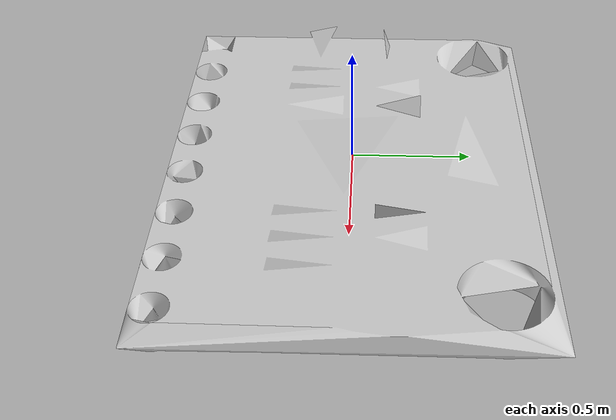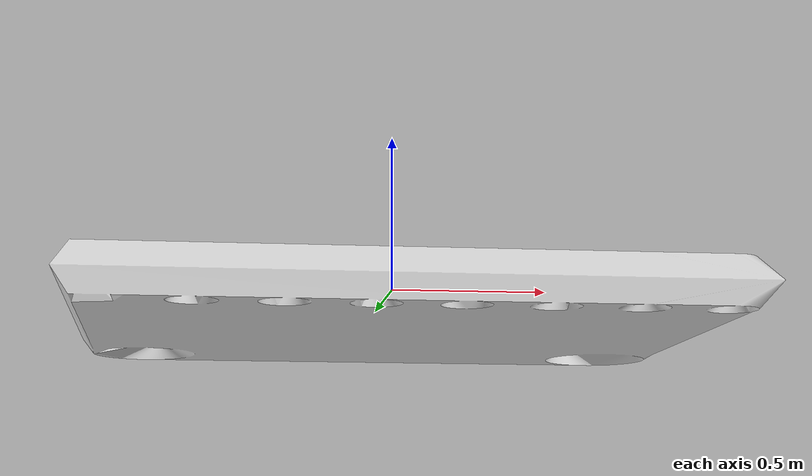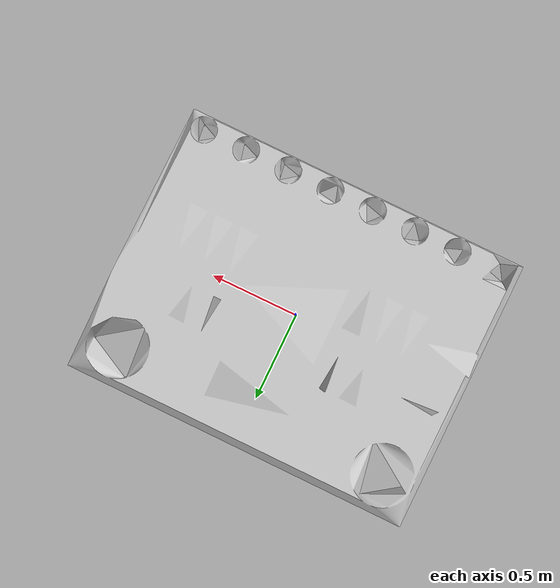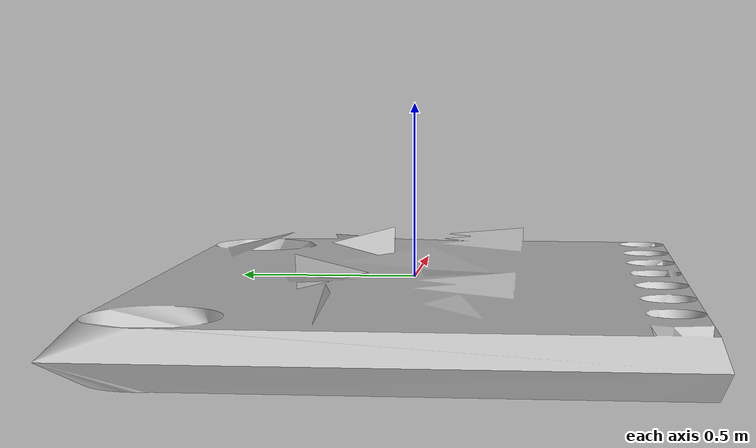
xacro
<?xml version="1.0" ?>
<robot name="mpu6050_sensor" xmlns:xacro="http://ros.org/wiki/xacro">

    <!-- Base link -->
    <link name="base_link"/>

    <!-- Imu link  -->
    <link name="imu_link">
      <visual name="imu_visual">
        <geometry>
          <mesh filename="package://lidarbot_description/meshes/MPU6050.dae" scale="100 100 100"/>
        </geometry>
      </visual>
    </link>

    <joint name="imu_joint" type="fixed">
        <parent link="base_link"/>
        <child link="imu_link"/>
        <origin xyz="0 0 0" rpy="0 0 0"/>
    </joint>

    <xacro:include filename="mpu6050_ros2_control.xacro"/>

</robot>
